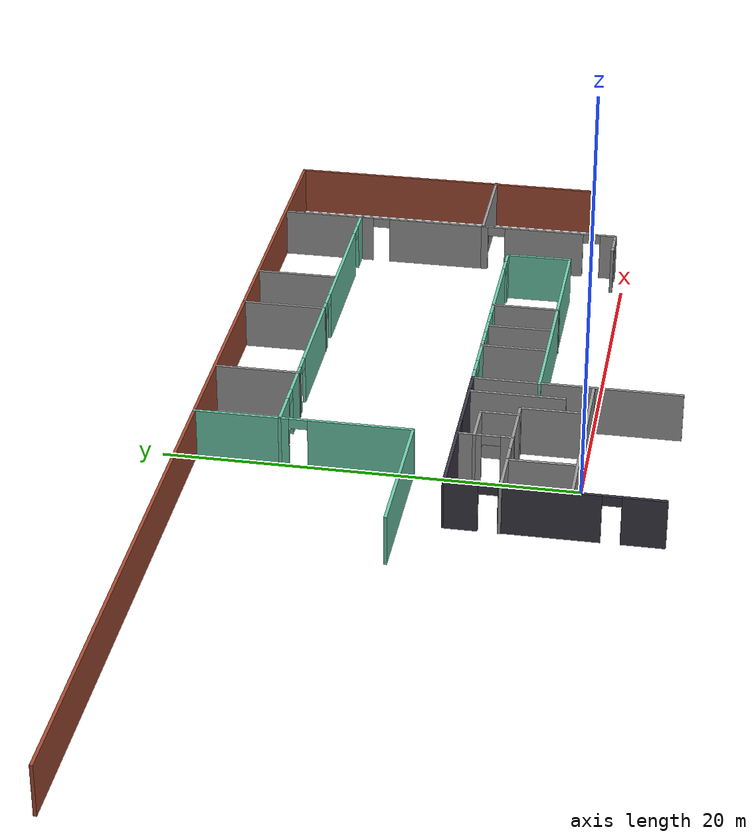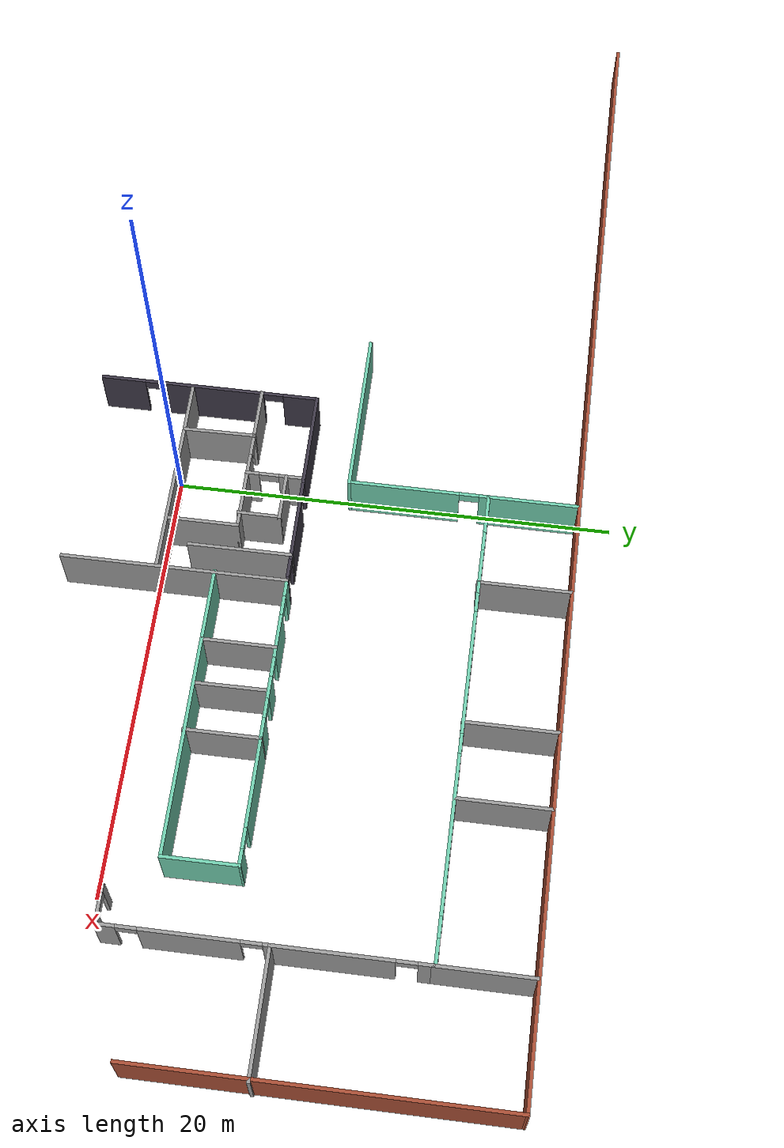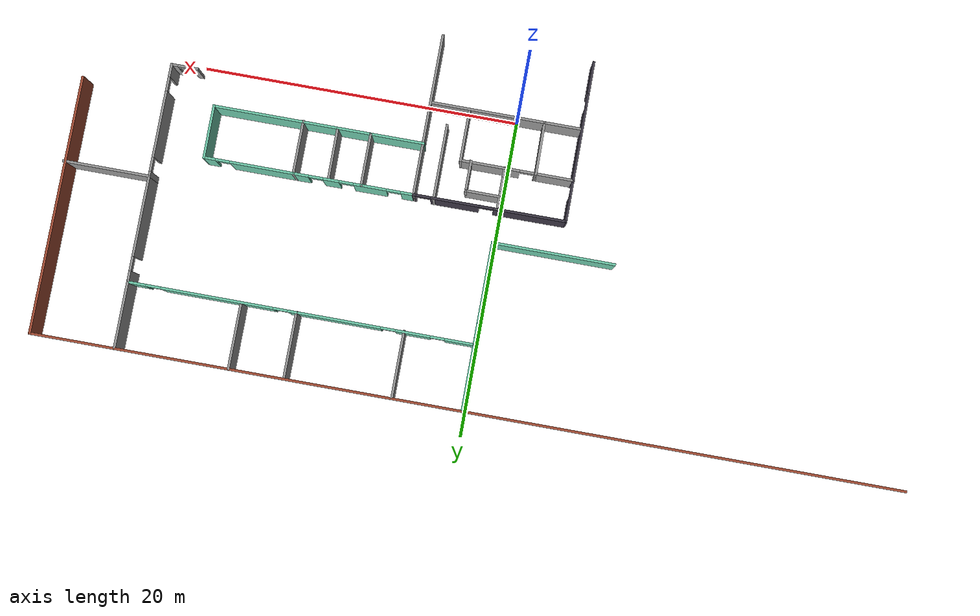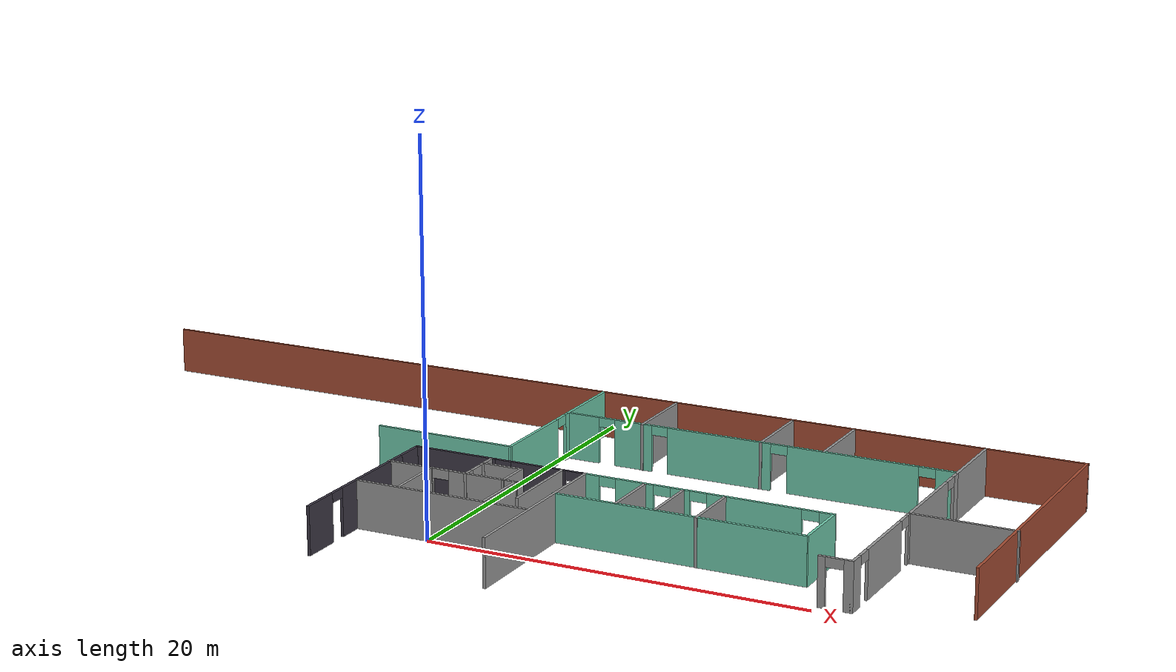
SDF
<sdf version="1.7">
 <model name="circuit_launch">
  <pose>0.02205 -0.005269 0 0 -0 0</pose>
  <link name="Wall_100">
   <pose>21.684 10.9599 0 0 -0 1.5708</pose>
   <visual name="Wall_100_Visual_0">
    <pose>-0.787773 0 1.25 0 -0 0</pose>
    <geometry><box><size>5.12125 0.15 2.5</size></box></geometry>
    <material>
     <script><uri>file://media/materials/scripts/gazebo.material</uri><name>Gazebo/Grey</name></script>
     <ambient>1 1 1 1</ambient>
    </material>
    <meta><layer>0</layer></meta>
   </visual>
   <collision name="Wall_100_Collision_0">
    <geometry><box><size>5.12125 0.15 2.5</size></box></geometry>
    <pose>-0.787773 0 1.25 0 -0 0</pose>
   </collision>
   <visual name="Wall_100_Visual_1">
    <pose>3.01063 0 1.25 0 -0 0</pose>
    <geometry><box><size>0.675545 0.15 2.5</size></box></geometry>
    <material>
     <script><uri>file://media/materials/scripts/gazebo.material</uri><name>Gazebo/Grey</name></script>
     <ambient>1 1 1 1</ambient>
    </material>
    <meta><layer>0</layer></meta>
   </visual>
   <collision name="Wall_100_Collision_1">
    <geometry><box><size>0.675545 0.15 2.5</size></box></geometry>
    <pose>3.01063 0 1.25 0 -0 0</pose>
   </collision>
   <visual name="Wall_100_Visual_2">
    <pose>2.22286 0 2.25 0 -0 0</pose>
    <geometry><box><size>0.9 0.15 0.5</size></box></geometry>
    <material>
     <script><uri>file://media/materials/scripts/gazebo.material</uri><name>Gazebo/Grey</name></script>
     <ambient>1 1 1 1</ambient>
    </material>
    <meta><layer>0</layer></meta>
   </visual>
   <collision name="Wall_100_Collision_2">
    <geometry><box><size>0.9 0.15 0.5</size></box></geometry>
    <pose>2.22286 0 2.25 0 -0 0</pose>
   </collision>
  </link>
  <link name="Wall_12">
   <collision name="Wall_12_Collision">
    <geometry><box><size>10.25 0.15 2.5</size></box></geometry>
    <pose>0 0 1.25 0 -0 0</pose>
   </collision>
   <visual name="Wall_12_Visual">
    <pose>0 0 1.25 0 -0 0</pose>
    <geometry><box><size>10.25 0.15 2.5</size></box></geometry>
    <material>
     <script><uri>file://media/materials/scripts/gazebo.material</uri><name>Gazebo/Grey</name></script>
     <ambient>1 1 1 1</ambient>
    </material>
    <meta><layer>0</layer></meta>
   </visual>
   <pose>5.48338 0.868521 0 0 -0 1.5708</pose>
  </link>
  <link name="Wall_13">
   <pose>0.725889 5.90411 0 0 -0 -3.13856</pose>
   <visual name="Wall_13_Visual_0">
    <pose>-4.71281 0 1.25 0 -0 0</pose>
    <geometry><box><size>0.239451 0.15 2.5</size></box></geometry>
    <material>
     <script><uri>file://media/materials/scripts/gazebo.material</uri><name>Gazebo/Grey</name></script>
     <ambient>0.239216 0.219608 0.27451 1</ambient>
    </material>
    <meta><layer>0</layer></meta>
   </visual>
   <collision name="Wall_13_Collision_0">
    <geometry><box><size>0.239451 0.15 2.5</size></box></geometry>
    <pose>-4.71281 0 1.25 0 -0 0</pose>
   </collision>
   <visual name="Wall_13_Visual_1">
    <pose>-2.18096 0 1.25 0 -0 0</pose>
    <geometry><box><size>3.02425 0.15 2.5</size></box></geometry>
    <material>
     <script><uri>file://media/materials/scripts/gazebo.material</uri><name>Gazebo/Grey</name></script>
     <ambient>0.239216 0.219608 0.27451 1</ambient>
    </material>
    <meta><layer>0</layer></meta>
   </visual>
   <collision name="Wall_13_Collision_1">
    <geometry><box><size>3.02425 0.15 2.5</size></box></geometry>
    <pose>-2.18096 0 1.25 0 -0 0</pose>
   </collision>
   <visual name="Wall_13_Visual_2">
    <pose>2.53185 0 1.25 0 -0 0</pose>
    <geometry><box><size>4.60137 0.15 2.5</size></box></geometry>
    <material>
     <script><uri>file://media/materials/scripts/gazebo.material</uri><name>Gazebo/Grey</name></script>
     <ambient>0.239216 0.219608 0.27451 1</ambient>
    </material>
    <meta><layer>0</layer></meta>
   </visual>
   <collision name="Wall_13_Collision_2">
    <geometry><box><size>4.60137 0.15 2.5</size></box></geometry>
    <pose>2.53185 0 1.25 0 -0 0</pose>
   </collision>
   <visual name="Wall_13_Visual_3">
    <pose>-4.14309 0 2.25 0 -0 0</pose>
    <geometry><box><size>0.9 0.15 0.5</size></box></geometry>
    <material>
     <script><uri>file://media/materials/scripts/gazebo.material</uri><name>Gazebo/Grey</name></script>
     <ambient>0.239216 0.219608 0.27451 1</ambient>
    </material>
    <meta><layer>0</layer></meta>
   </visual>
   <collision name="Wall_13_Collision_3">
    <geometry><box><size>0.9 0.15 0.5</size></box></geometry>
    <pose>-4.14309 0 2.25 0 -0 0</pose>
   </collision>
   <visual name="Wall_13_Visual_4">
    <pose>-0.218831 0 2.25 0 -0 0</pose>
    <geometry><box><size>0.9 0.15 0.5</size></box></geometry>
    <material>
     <script><uri>file://media/materials/scripts/gazebo.material</uri><name>Gazebo/Grey</name></script>
     <ambient>0.239216 0.219608 0.27451 1</ambient>
    </material>
    <meta><layer>0</layer></meta>
   </visual>
   <collision name="Wall_13_Collision_4">
    <geometry><box><size>0.9 0.15 0.5</size></box></geometry>
    <pose>-0.218831 0 2.25 0 -0 0</pose>
   </collision>
  </link>
  <link name="Wall_14">
   <pose>-4.03141 0.854113 0 0 -0 -1.57076</pose>
   <visual name="Wall_14_Visual_0">
    <pose>-4.27972 0 1.25 0 -0 0</pose>
    <geometry><box><size>1.66175 0.15 2.5</size></box></geometry>
    <material>
     <script><uri>file://media/materials/scripts/gazebo.material</uri><name>Gazebo/Grey</name></script>
     <ambient>0.239216 0.219608 0.27451 1</ambient>
    </material>
    <meta><layer>0</layer></meta>
   </visual>
   <collision name="Wall_14_Collision_0">
    <geometry><box><size>1.66175 0.15 2.5</size></box></geometry>
    <pose>-4.27972 0 1.25 0 -0 0</pose>
   </collision>
   <visual name="Wall_14_Visual_1">
    <pose>-0.200437 0 1.25 0 -0 0</pose>
    <geometry><box><size>4.69681 0.15 2.5</size></box></geometry>
    <material>
     <script><uri>file://media/materials/scripts/gazebo.material</uri><name>Gazebo/Grey</name></script>
     <ambient>0.239216 0.219608 0.27451 1</ambient>
    </material>
    <meta><layer>0</layer></meta>
   </visual>
   <collision name="Wall_14_Collision_1">
    <geometry><box><size>4.69681 0.15 2.5</size></box></geometry>
    <pose>-0.200437 0 1.25 0 -0 0</pose>
   </collision>
   <visual name="Wall_14_Visual_2">
    <pose>4.07928 0 1.25 0 -0 0</pose>
    <geometry><box><size>2.06262 0.15 2.5</size></box></geometry>
    <material>
     <script><uri>file://media/materials/scripts/gazebo.material</uri><name>Gazebo/Grey</name></script>
     <ambient>0.239216 0.219608 0.27451 1</ambient>
    </material>
    <meta><layer>0</layer></meta>
   </visual>
   <collision name="Wall_14_Collision_2">
    <geometry><box><size>2.06262 0.15 2.5</size></box></geometry>
    <pose>4.07928 0 1.25 0 -0 0</pose>
   </collision>
   <visual name="Wall_14_Visual_3">
    <pose>-2.99884 0 2.25 0 -0 0</pose>
    <geometry><box><size>0.9 0.15 0.5</size></box></geometry>
    <material>
     <script><uri>file://media/materials/scripts/gazebo.material</uri><name>Gazebo/Grey</name></script>
     <ambient>0.239216 0.219608 0.27451 1</ambient>
    </material>
    <meta><layer>0</layer></meta>
   </visual>
   <collision name="Wall_14_Collision_3">
    <geometry><box><size>0.9 0.15 0.5</size></box></geometry>
    <pose>-2.99884 0 2.25 0 -0 0</pose>
   </collision>
   <visual name="Wall_14_Visual_4">
    <pose>2.59797 0 2.25 0 -0 0</pose>
    <geometry><box><size>0.9 0.15 0.5</size></box></geometry>
    <material>
     <script><uri>file://media/materials/scripts/gazebo.material</uri><name>Gazebo/Grey</name></script>
     <ambient>0.239216 0.219608 0.27451 1</ambient>
    </material>
    <meta><layer>0</layer></meta>
   </visual>
   <collision name="Wall_14_Collision_4">
    <geometry><box><size>0.9 0.15 0.5</size></box></geometry>
    <pose>2.59797 0 2.25 0 -0 0</pose>
   </collision>
  </link>
  <link name="Wall_156">
   <collision name="Wall_156_Collision">
    <geometry><box><size>4.3032 0.15 2.5</size></box></geometry>
    <pose>0 0 1.25 0 -0 0</pose>
   </collision>
   <visual name="Wall_156_Visual">
    <pose>0 0 1.25 0 -0 0</pose>
    <geometry><box><size>4.3032 0.15 2.5</size></box></geometry>
    <material>
     <script><uri>file://media/materials/scripts/gazebo.material</uri><name>Gazebo/Grey</name></script>
     <ambient>1 1 1 1</ambient>
    </material>
    <meta><layer>0</layer></meta>
   </visual>
   <pose>21.684 16.3099 0 0 -0 1.5708</pose>
  </link>
  <link name="Wall_158">
   <collision name="Wall_158_Collision">
    <geometry><box><size>4.25 0.15 2.5</size></box></geometry>
    <pose>0 0 1.25 0 -0 0</pose>
   </collision>
   <visual name="Wall_158_Visual">
    <pose>0 0 1.25 0 -0 0</pose>
    <geometry><box><size>4.25 0.15 2.5</size></box></geometry>
    <material>
     <script><uri>file://media/materials/scripts/gazebo.material</uri><name>Gazebo/Grey</name></script>
     <ambient>1 1 1 1</ambient>
    </material>
    <meta><layer>0</layer></meta>
   </visual>
   <pose>14.6128 16.3903 0 0 -0 1.5708</pose>
  </link>
  <link name="Wall_160">
   <collision name="Wall_160_Collision">
    <geometry><box><size>4.25 0.15 2.5</size></box></geometry>
    <pose>0 0 1.25 0 -0 0</pose>
   </collision>
   <visual name="Wall_160_Visual">
    <pose>0 0 1.25 0 -0 0</pose>
    <geometry><box><size>4.25 0.15 2.5</size></box></geometry>
    <material>
     <script><uri>file://media/materials/scripts/gazebo.material</uri><name>Gazebo/Grey</name></script>
     <ambient>1 1 1 1</ambient>
    </material>
    <meta><layer>0</layer></meta>
   </visual>
   <pose>11.1867 16.3597 0 0 -0 1.5708</pose>
  </link>
  <link name="Wall_163">
   <collision name="Wall_163_Collision">
    <geometry><box><size>4.25 0.15 2.5</size></box></geometry>
    <pose>0 0 1.25 0 -0 0</pose>
   </collision>
   <visual name="Wall_163_Visual">
    <pose>0 0 1.25 0 -0 0</pose>
    <geometry><box><size>4.25 0.15 2.5</size></box></geometry>
    <material>
     <script><uri>file://media/materials/scripts/gazebo.material</uri><name>Gazebo/Grey</name></script>
     <ambient>1 1 1 1</ambient>
    </material>
    <meta><layer>0</layer></meta>
   </visual>
   <pose>4.51804 16.3291 0 0 -0 1.5708</pose>
  </link>
  <link name="Wall_165">
   <collision name="Wall_165_Collision">
    <geometry><box><size>4.25 0.15 2.5</size></box></geometry>
    <pose>0 0 1.25 0 -0 0</pose>
   </collision>
   <visual name="Wall_165_Visual">
    <pose>0 0 1.25 0 -0 0</pose>
    <geometry><box><size>4.25 0.15 2.5</size></box></geometry>
    <material>
     <script><uri>file://media/materials/scripts/gazebo.material</uri><name>Gazebo/Grey</name></script>
     <ambient>0.435294 0.796078 0.67451 1</ambient>
    </material>
    <meta><layer>0</layer></meta>
   </visual>
   <pose>0.179829 16.3748 0 0 -0 1.5708</pose>
  </link>
  <link name="Wall_194">
   <pose>10.8548 14.3248 0 0 -0 0</pose>
   <visual name="Wall_194_Visual_0">
    <pose>-9.80483 0 1.25 0 -0 0</pose>
    <geometry><box><size>1.89033 0.15 2.5</size></box></geometry>
    <material>
     <script><uri>file://media/materials/scripts/gazebo.material</uri><name>Gazebo/Grey</name></script>
     <ambient>0.435294 0.796078 0.67451 1</ambient>
    </material>
    <meta><layer>0</layer></meta>
   </visual>
   <collision name="Wall_194_Collision_0">
    <geometry><box><size>1.89033 0.15 2.5</size></box></geometry>
    <pose>-9.80483 0 1.25 0 -0 0</pose>
   </collision>
   <visual name="Wall_194_Visual_1">
    <pose>-6.88016 0 1.25 0 -0 0</pose>
    <geometry><box><size>2.15902 0.15 2.5</size></box></geometry>
    <material>
     <script><uri>file://media/materials/scripts/gazebo.material</uri><name>Gazebo/Grey</name></script>
     <ambient>0.435294 0.796078 0.67451 1</ambient>
    </material>
    <meta><layer>0</layer></meta>
   </visual>
   <collision name="Wall_194_Collision_1">
    <geometry><box><size>2.15902 0.15 2.5</size></box></geometry>
    <pose>-6.88016 0 1.25 0 -0 0</pose>
   </collision>
   <visual name="Wall_194_Visual_2">
    <pose>-2.01232 0 1.25 0 -0 0</pose>
    <geometry><box><size>5.77665 0.15 2.5</size></box></geometry>
    <material>
     <script><uri>file://media/materials/scripts/gazebo.material</uri><name>Gazebo/Grey</name></script>
     <ambient>0.435294 0.796078 0.67451 1</ambient>
    </material>
    <meta><layer>0</layer></meta>
   </visual>
   <collision name="Wall_194_Collision_2">
    <geometry><box><size>5.77665 0.15 2.5</size></box></geometry>
    <pose>-2.01232 0 1.25 0 -0 0</pose>
   </collision>
   <visual name="Wall_194_Visual_3">
    <pose>5.28944 0 1.25 0 -0 0</pose>
    <geometry><box><size>7.02686 0.15 2.5</size></box></geometry>
    <material>
     <script><uri>file://media/materials/scripts/gazebo.material</uri><name>Gazebo/Grey</name></script>
     <ambient>0.435294 0.796078 0.67451 1</ambient>
    </material>
    <meta><layer>0</layer></meta>
   </visual>
   <collision name="Wall_194_Collision_3">
    <geometry><box><size>7.02686 0.15 2.5</size></box></geometry>
    <pose>5.28944 0 1.25 0 -0 0</pose>
   </collision>
   <visual name="Wall_194_Visual_4">
    <pose>10.2264 0 1.25 0 -0 0</pose>
    <geometry><box><size>1.04713 0.15 2.5</size></box></geometry>
    <material>
     <script><uri>file://media/materials/scripts/gazebo.material</uri><name>Gazebo/Grey</name></script>
     <ambient>0.435294 0.796078 0.67451 1</ambient>
    </material>
    <meta><layer>0</layer></meta>
   </visual>
   <collision name="Wall_194_Collision_4">
    <geometry><box><size>1.04713 0.15 2.5</size></box></geometry>
    <pose>10.2264 0 1.25 0 -0 0</pose>
   </collision>
   <visual name="Wall_194_Visual_5">
    <pose>-8.40967 0 2.25 0 -0 0</pose>
    <geometry><box><size>0.9 0.15 0.5</size></box></geometry>
    <material>
     <script><uri>file://media/materials/scripts/gazebo.material</uri><name>Gazebo/Grey</name></script>
     <ambient>0.435294 0.796078 0.67451 1</ambient>
    </material>
    <meta><layer>0</layer></meta>
   </visual>
   <collision name="Wall_194_Collision_5">
    <geometry><box><size>0.9 0.15 0.5</size></box></geometry>
    <pose>-8.40967 0 2.25 0 -0 0</pose>
   </collision>
   <visual name="Wall_194_Visual_6">
    <pose>-5.35064 0 2.25 0 -0 0</pose>
    <geometry><box><size>0.9 0.15 0.5</size></box></geometry>
    <material>
     <script><uri>file://media/materials/scripts/gazebo.material</uri><name>Gazebo/Grey</name></script>
     <ambient>0.435294 0.796078 0.67451 1</ambient>
    </material>
    <meta><layer>0</layer></meta>
   </visual>
   <collision name="Wall_194_Collision_6">
    <geometry><box><size>0.9 0.15 0.5</size></box></geometry>
    <pose>-5.35064 0 2.25 0 -0 0</pose>
   </collision>
   <visual name="Wall_194_Visual_7">
    <pose>1.32601 0 2.25 0 -0 0</pose>
    <geometry><box><size>0.9 0.15 0.5</size></box></geometry>
    <material>
     <script><uri>file://media/materials/scripts/gazebo.material</uri><name>Gazebo/Grey</name></script>
     <ambient>0.435294 0.796078 0.67451 1</ambient>
    </material>
    <meta><layer>0</layer></meta>
   </visual>
   <collision name="Wall_194_Collision_7">
    <geometry><box><size>0.9 0.15 0.5</size></box></geometry>
    <pose>1.32601 0 2.25 0 -0 0</pose>
   </collision>
   <visual name="Wall_194_Visual_8">
    <pose>9.25286 0 2.25 0 -0 0</pose>
    <geometry><box><size>0.9 0.15 0.5</size></box></geometry>
    <material>
     <script><uri>file://media/materials/scripts/gazebo.material</uri><name>Gazebo/Grey</name></script>
     <ambient>0.435294 0.796078 0.67451 1</ambient>
    </material>
    <meta><layer>0</layer></meta>
   </visual>
   <collision name="Wall_194_Collision_8">
    <geometry><box><size>0.9 0.15 0.5</size></box></geometry>
    <pose>9.25286 0 2.25 0 -0 0</pose>
   </collision>
  </link>
  <link name="Wall_198">
   <pose>0.179829 11.1498 0 0 -0 -1.5708</pose>
   <visual name="Wall_198_Visual_0">
    <pose>-2.99528 0 1.25 0 -0 0</pose>
    <geometry><box><size>0.509431 0.15 2.5</size></box></geometry>
    <material>
     <script><uri>file://media/materials/scripts/gazebo.material</uri><name>Gazebo/Grey</name></script>
     <ambient>0.435294 0.796078 0.67451 1</ambient>
    </material>
    <meta><layer>0</layer></meta>
   </visual>
   <collision name="Wall_198_Collision_0">
    <geometry><box><size>0.509431 0.15 2.5</size></box></geometry>
    <pose>-2.99528 0 1.25 0 -0 0</pose>
   </collision>
   <visual name="Wall_198_Visual_1">
    <pose>0.704715 0 1.25 0 -0 0</pose>
    <geometry><box><size>5.09057 0.15 2.5</size></box></geometry>
    <material>
     <script><uri>file://media/materials/scripts/gazebo.material</uri><name>Gazebo/Grey</name></script>
     <ambient>0.435294 0.796078 0.67451 1</ambient>
    </material>
    <meta><layer>0</layer></meta>
   </visual>
   <collision name="Wall_198_Collision_1">
    <geometry><box><size>5.09057 0.15 2.5</size></box></geometry>
    <pose>0.704715 0 1.25 0 -0 0</pose>
   </collision>
   <visual name="Wall_198_Visual_2">
    <pose>-2.29057 0 2.25 0 -0 0</pose>
    <geometry><box><size>0.9 0.15 0.5</size></box></geometry>
    <material>
     <script><uri>file://media/materials/scripts/gazebo.material</uri><name>Gazebo/Grey</name></script>
     <ambient>0.435294 0.796078 0.67451 1</ambient>
    </material>
    <meta><layer>0</layer></meta>
   </visual>
   <collision name="Wall_198_Collision_2">
    <geometry><box><size>0.9 0.15 0.5</size></box></geometry>
    <pose>-2.29057 0 2.25 0 -0 0</pose>
   </collision>
  </link>
  <link name="Wall_200">
   <collision name="Wall_200_Collision">
    <geometry><box><size>7.75 0.15 2.5</size></box></geometry>
    <pose>0 0 1.25 0 -0 0</pose>
   </collision>
   <visual name="Wall_200_Visual">
    <pose>0 0 1.25 0 -0 0</pose>
    <geometry><box><size>7.75 0.15 2.5</size></box></geometry>
    <material>
     <script><uri>file://media/materials/scripts/gazebo.material</uri><name>Gazebo/Grey</name></script>
     <ambient>0.435294 0.796078 0.67451 1</ambient>
    </material>
    <meta><layer>0</layer></meta>
   </visual>
   <pose>-3.62017 7.97482 0 0 -0 3.14159</pose>
  </link>
  <link name="Wall_214">
   <collision name="Wall_214_Collision">
    <geometry><box><size>3.44918 0.15 2.5</size></box></geometry>
    <pose>0 0 1.25 0 -0 0</pose>
   </collision>
   <visual name="Wall_214_Visual">
    <pose>0 0 1.25 0 -0 0</pose>
    <geometry><box><size>3.44918 0.15 2.5</size></box></geometry>
    <material>
     <script><uri>file://media/materials/scripts/gazebo.material</uri><name>Gazebo/Grey</name></script>
     <ambient>1 1 1 1</ambient>
    </material>
    <meta><layer>0</layer></meta>
   </visual>
   <pose>12.9929 4.29092 0 0 -0 -1.5708</pose>
  </link>
  <link name="Wall_216">
   <collision name="Wall_216_Collision">
    <geometry><box><size>3.30783 0.15 2.5</size></box></geometry>
    <pose>0 0 1.25 0 -0 0</pose>
   </collision>
   <visual name="Wall_216_Visual">
    <pose>0 0 1.25 0 -0 0</pose>
    <geometry><box><size>3.30783 0.15 2.5</size></box></geometry>
    <material>
     <script><uri>file://media/materials/scripts/gazebo.material</uri><name>Gazebo/Grey</name></script>
     <ambient>1 1 1 1</ambient>
    </material>
    <meta><layer>0</layer></meta>
   </visual>
   <pose>10.8106 4.34121 0 0 -0 -1.56443</pose>
  </link>
  <link name="Wall_218">
   <collision name="Wall_218_Collision">
    <geometry><box><size>3.34806 0.15 2.5</size></box></geometry>
    <pose>0 0 1.25 0 -0 0</pose>
   </collision>
   <visual name="Wall_218_Visual">
    <pose>0 0 1.25 0 -0 0</pose>
    <geometry><box><size>3.34806 0.15 2.5</size></box></geometry>
    <material>
     <script><uri>file://media/materials/scripts/gazebo.material</uri><name>Gazebo/Grey</name></script>
     <ambient>1 1 1 1</ambient>
    </material>
    <meta><layer>0</layer></meta>
   </visual>
   <pose>8.74891 4.32109 0 0 -0 -1.5708</pose>
  </link>
  <link name="Wall_22">
   <collision name="Wall_22_Collision">
    <geometry><box><size>9.5 0.15 2.5</size></box></geometry>
    <pose>0 0 1.25 0 -0 0</pose>
   </collision>
   <visual name="Wall_22_Visual">
    <pose>0 0 1.25 0 -0 0</pose>
    <geometry><box><size>9.5 0.15 2.5</size></box></geometry>
    <material>
     <script><uri>file://media/materials/scripts/gazebo.material</uri><name>Gazebo/Grey</name></script>
     <ambient>1 1 1 1</ambient>
    </material>
    <meta><layer>0</layer></meta>
   </visual>
   <pose>0.676779 0.065985 0 0 -0 0</pose>
  </link>
  <link name="Wall_224">
   <pose>15.7929 5.94024 0 0 -0 0</pose>
   <visual name="Wall_224_Visual_0">
    <pose>-0.850007 0 1.25 0 -0 0</pose>
    <geometry><box><size>4.04999 0.15 2.5</size></box></geometry>
    <material>
     <script><uri>file://media/materials/scripts/gazebo.material</uri><name>Gazebo/Grey</name></script>
     <ambient>0.435294 0.796078 0.67451 1</ambient>
    </material>
    <meta><layer>0</layer></meta>
   </visual>
   <collision name="Wall_224_Collision_0">
    <geometry><box><size>4.04999 0.15 2.5</size></box></geometry>
    <pose>-0.850007 0 1.25 0 -0 0</pose>
   </collision>
   <visual name="Wall_224_Visual_1">
    <pose>2.47499 0 1.25 0 -0 0</pose>
    <geometry><box><size>0.800014 0.15 2.5</size></box></geometry>
    <material>
     <script><uri>file://media/materials/scripts/gazebo.material</uri><name>Gazebo/Grey</name></script>
     <ambient>0.435294 0.796078 0.67451 1</ambient>
    </material>
    <meta><layer>0</layer></meta>
   </visual>
   <collision name="Wall_224_Collision_1">
    <geometry><box><size>0.800014 0.15 2.5</size></box></geometry>
    <pose>2.47499 0 1.25 0 -0 0</pose>
   </collision>
   <visual name="Wall_224_Visual_2">
    <pose>1.62499 0 2.25 0 -0 0</pose>
    <geometry><box><size>0.9 0.15 0.5</size></box></geometry>
    <material>
     <script><uri>file://media/materials/scripts/gazebo.material</uri><name>Gazebo/Grey</name></script>
     <ambient>0.435294 0.796078 0.67451 1</ambient>
    </material>
    <meta><layer>0</layer></meta>
   </visual>
   <collision name="Wall_224_Collision_2">
    <geometry><box><size>0.9 0.15 0.5</size></box></geometry>
    <pose>1.62499 0 2.25 0 -0 0</pose>
   </collision>
  </link>
  <link name="Wall_225">
   <collision name="Wall_225_Collision">
    <geometry><box><size>3.40841 0.15 2.5</size></box></geometry>
    <pose>0 0 1.25 0 -0 0</pose>
   </collision>
   <visual name="Wall_225_Visual">
    <pose>0 0 1.25 0 -0 0</pose>
    <geometry><box><size>3.40841 0.15 2.5</size></box></geometry>
    <material>
     <script><uri>file://media/materials/scripts/gazebo.material</uri><name>Gazebo/Grey</name></script>
     <ambient>0.435294 0.796078 0.67451 1</ambient>
    </material>
    <meta><layer>0</layer></meta>
   </visual>
   <pose>18.5987 4.31104 0 0 -0 -1.56721</pose>
  </link>
  <link name="Wall_29">
   <collision name="Wall_29_Collision">
    <geometry><box><size>2.5 0.15 2.5</size></box></geometry>
    <pose>0 0 1.25 0 -0 0</pose>
   </collision>
   <visual name="Wall_29_Visual">
    <pose>0 0 1.25 0 -0 0</pose>
    <geometry><box><size>2.5 0.15 2.5</size></box></geometry>
    <material>
     <script><uri>file://media/materials/scripts/gazebo.material</uri><name>Gazebo/Grey</name></script>
     <ambient>1 1 1 1</ambient>
    </material>
    <meta><layer>0</layer></meta>
   </visual>
   <pose>-2.88406 3.30545 0 0 -0 0</pose>
  </link>
  <link name="Wall_30">
   <collision name="Wall_30_Collision">
    <geometry><box><size>3.37448 0.15 2.5</size></box></geometry>
    <pose>0 0 1.25 0 -0 0</pose>
   </collision>
   <visual name="Wall_30_Visual">
    <pose>0 0 1.25 0 -0 0</pose>
    <geometry><box><size>3.37448 0.15 2.5</size></box></geometry>
    <material>
     <script><uri>file://media/materials/scripts/gazebo.material</uri><name>Gazebo/Grey</name></script>
     <ambient>1 1 1 1</ambient>
    </material>
    <meta><layer>0</layer></meta>
   </visual>
   <pose>-1.69017 1.69332 0 0 -0 -1.55908</pose>
  </link>
  <link name="Wall_32">
   <pose>0.651978 3.30545 0 0 -0 0</pose>
   <visual name="Wall_32_Visual_0">
    <pose>-2.33849 0 1.25 0 -0 0</pose>
    <geometry><box><size>0.19508 0.15 2.5</size></box></geometry>
    <material>
     <script><uri>file://media/materials/scripts/gazebo.material</uri><name>Gazebo/Grey</name></script>
     <ambient>1 1 1 1</ambient>
    </material>
    <meta><layer>0</layer></meta>
   </visual>
   <collision name="Wall_32_Collision_0">
    <geometry><box><size>0.19508 0.15 2.5</size></box></geometry>
    <pose>-2.33849 0 1.25 0 -0 0</pose>
   </collision>
   <visual name="Wall_32_Visual_1">
    <pose>0.54754 0 1.25 0 -0 0</pose>
    <geometry><box><size>3.77699 0.15 2.5</size></box></geometry>
    <material>
     <script><uri>file://media/materials/scripts/gazebo.material</uri><name>Gazebo/Grey</name></script>
     <ambient>1 1 1 1</ambient>
    </material>
    <meta><layer>0</layer></meta>
   </visual>
   <collision name="Wall_32_Collision_1">
    <geometry><box><size>3.77699 0.15 2.5</size></box></geometry>
    <pose>0.54754 0 1.25 0 -0 0</pose>
   </collision>
   <visual name="Wall_32_Visual_2">
    <pose>-1.79095 0 2.25 0 -0 0</pose>
    <geometry><box><size>0.9 0.15 0.5</size></box></geometry>
    <material>
     <script><uri>file://media/materials/scripts/gazebo.material</uri><name>Gazebo/Grey</name></script>
     <ambient>1 1 1 1</ambient>
    </material>
    <meta><layer>0</layer></meta>
   </visual>
   <collision name="Wall_32_Collision_2">
    <geometry><box><size>0.9 0.15 0.5</size></box></geometry>
    <pose>-1.79095 0 2.25 0 -0 0</pose>
   </collision>
  </link>
  <link name="Wall_33">
   <collision name="Wall_33_Collision">
    <geometry><box><size>3.25 0.15 2.5</size></box></geometry>
    <pose>0 0 1.25 0 -0 0</pose>
   </collision>
   <visual name="Wall_33_Visual">
    <pose>0 0 1.25 0 -0 0</pose>
    <geometry><box><size>3.25 0.15 2.5</size></box></geometry>
    <material>
     <script><uri>file://media/materials/scripts/gazebo.material</uri><name>Gazebo/Grey</name></script>
     <ambient>1 1 1 1</ambient>
    </material>
    <meta><layer>0</layer></meta>
   </visual>
   <pose>3.01301 1.75545 0 0 -0 -1.5708</pose>
  </link>
  <link name="Wall_36">
   <collision name="Wall_36_Collision">
    <geometry><box><size>2.25 0.15 2.5</size></box></geometry>
    <pose>0 0 1.25 0 -0 0</pose>
   </collision>
   <visual name="Wall_36_Visual">
    <pose>0 0 1.25 0 -0 0</pose>
    <geometry><box><size>2.25 0.15 2.5</size></box></geometry>
    <material>
     <script><uri>file://media/materials/scripts/gazebo.material</uri><name>Gazebo/Grey</name></script>
     <ambient>1 1 1 1</ambient>
    </material>
    <meta><layer>0</layer></meta>
   </visual>
   <pose>1.31023 5.10177 0 0 -0 0</pose>
  </link>
  <link name="Wall_39">
   <collision name="Wall_39_Collision">
    <geometry><box><size>2 0.15 2.5</size></box></geometry>
    <pose>0 0 1.25 0 -0 0</pose>
   </collision>
   <visual name="Wall_39_Visual">
    <pose>0 0 1.25 0 -0 0</pose>
    <geometry><box><size>2 0.15 2.5</size></box></geometry>
    <material>
     <script><uri>file://media/materials/scripts/gazebo.material</uri><name>Gazebo/Grey</name></script>
     <ambient>1 1 1 1</ambient>
    </material>
    <meta><layer>0</layer></meta>
   </visual>
   <pose>2.36023 4.17677 0 0 -0 -1.5708</pose>
  </link>
  <link name="Wall_46">
   <pose>0.260229 4.59094 0 0 -0 -1.5708</pose>
   <visual name="Wall_46_Visual_0">
    <pose>-0.771645 0 1.25 0 -0 0</pose>
    <geometry><box><size>1.20671 0.15 2.5</size></box></geometry>
    <material>
     <script><uri>file://media/materials/scripts/gazebo.material</uri><name>Gazebo/Grey</name></script>
     <ambient>1 1 1 1</ambient>
    </material>
    <meta><layer>0</layer></meta>
   </visual>
   <collision name="Wall_46_Collision_0">
    <geometry><box><size>1.20671 0.15 2.5</size></box></geometry>
    <pose>-0.771645 0 1.25 0 -0 0</pose>
   </collision>
   <visual name="Wall_46_Visual_1">
    <pose>1.05336 0 1.25 0 -0 0</pose>
    <geometry><box><size>0.64329 0.15 2.5</size></box></geometry>
    <material>
     <script><uri>file://media/materials/scripts/gazebo.material</uri><name>Gazebo/Grey</name></script>
     <ambient>1 1 1 1</ambient>
    </material>
    <meta><layer>0</layer></meta>
   </visual>
   <collision name="Wall_46_Collision_1">
    <geometry><box><size>0.64329 0.15 2.5</size></box></geometry>
    <pose>1.05336 0 1.25 0 -0 0</pose>
   </collision>
   <visual name="Wall_46_Visual_2">
    <pose>0.28171 0 2.25 0 -0 0</pose>
    <geometry><box><size>0.9 0.15 0.5</size></box></geometry>
    <material>
     <script><uri>file://media/materials/scripts/gazebo.material</uri><name>Gazebo/Grey</name></script>
     <ambient>1 1 1 1</ambient>
    </material>
    <meta><layer>0</layer></meta>
   </visual>
   <collision name="Wall_46_Collision_2">
    <geometry><box><size>0.9 0.15 0.5</size></box></geometry>
    <pose>0.28171 0 2.25 0 -0 0</pose>
   </collision>
  </link>
  <link name="Wall_49">
   <collision name="Wall_49_Collision">
    <geometry><box><size>4.75 0.15 2.5</size></box></geometry>
    <pose>0 0 1.25 0 -0 0</pose>
   </collision>
   <visual name="Wall_49_Visual">
    <pose>0 0 1.25 0 -0 0</pose>
    <geometry><box><size>4.75 0.15 2.5</size></box></geometry>
    <material>
     <script><uri>file://media/materials/scripts/gazebo.material</uri><name>Gazebo/Grey</name></script>
     <ambient>1 1 1 1</ambient>
    </material>
    <meta><layer>0</layer></meta>
   </visual>
   <pose>4.2145 3.62135 0 0 -0 -1.5708</pose>
  </link>
  <link name="Wall_59">
   <collision name="Wall_59_Collision">
    <geometry><box><size>54.1178 0.15 2.5</size></box></geometry>
    <pose>0 0 1.25 0 -0 0</pose>
   </collision>
   <visual name="Wall_59_Visual">
    <pose>0 0 1.25 0 -0 0</pose>
    <geometry><box><size>54.1178 0.15 2.5</size></box></geometry>
    <material>
     <script><uri>file://media/materials/scripts/gazebo.material</uri><name>Gazebo/Bricks</name></script>
     <ambient>1 1 1 1</ambient>
    </material>
    <meta><layer>0</layer></meta>
   </visual>
   <pose>-0.040942 18.438 0 0 -0 0.00102</pose>
  </link>
  <link name="Wall_60">
   <collision name="Wall_60_Collision">
    <geometry><box><size>16.25 0.15 2.5</size></box></geometry>
    <pose>0 0 1.25 0 -0 0</pose>
   </collision>
   <visual name="Wall_60_Visual">
    <pose>0 0 1.25 0 -0 0</pose>
    <geometry><box><size>16.25 0.15 2.5</size></box></geometry>
    <material>
     <script><uri>file://media/materials/scripts/gazebo.material</uri><name>Gazebo/Bricks</name></script>
     <ambient>1 1 1 1</ambient>
    </material>
    <meta><layer>0</layer></meta>
   </visual>
   <pose>26.9429 10.4155 0 0 -0 -1.5708</pose>
  </link>
  <link name="Wall_84">
   <collision name="Wall_84_Collision">
    <geometry><box><size>13.25 0.15 2.5</size></box></geometry>
    <pose>0 0 1.25 0 -0 0</pose>
   </collision>
   <visual name="Wall_84_Visual">
    <pose>0 0 1.25 0 -0 0</pose>
    <geometry><box><size>13.25 0.15 2.5</size></box></geometry>
    <material>
     <script><uri>file://media/materials/scripts/gazebo.material</uri><name>Gazebo/Grey</name></script>
     <ambient>0.435294 0.796078 0.67451 1</ambient>
    </material>
    <meta><layer>0</layer></meta>
   </visual>
   <pose>11.9947 2.67806 0 0 -0 0</pose>
  </link>
  <link name="Wall_93">
   <pose>9.23813 5.92938 0 0 -0 -3.1387</pose>
   <visual name="Wall_93_Visual_0">
    <pose>-3.32054 0 1.25 0 -0 0</pose>
    <geometry><box><size>1.01844 0.15 2.5</size></box></geometry>
    <material>
     <script><uri>file://media/materials/scripts/gazebo.material</uri><name>Gazebo/Grey</name></script>
     <ambient>0.435294 0.796078 0.67451 1</ambient>
    </material>
    <meta><layer>0</layer></meta>
   </visual>
   <collision name="Wall_93_Collision_0">
    <geometry><box><size>1.01844 0.15 2.5</size></box></geometry>
    <pose>-3.32054 0 1.25 0 -0 0</pose>
   </collision>
   <visual name="Wall_93_Visual_1">
    <pose>-1.39685 0 1.25 0 -0 0</pose>
    <geometry><box><size>1.02895 0.15 2.5</size></box></geometry>
    <material>
     <script><uri>file://media/materials/scripts/gazebo.material</uri><name>Gazebo/Grey</name></script>
     <ambient>0.435294 0.796078 0.67451 1</ambient>
    </material>
    <meta><layer>0</layer></meta>
   </visual>
   <collision name="Wall_93_Collision_1">
    <geometry><box><size>1.02895 0.15 2.5</size></box></geometry>
    <pose>-1.39685 0 1.25 0 -0 0</pose>
   </collision>
   <visual name="Wall_93_Visual_2">
    <pose>1.04465 0 1.25 0 -0 0</pose>
    <geometry><box><size>2.05404 0.15 2.5</size></box></geometry>
    <material>
     <script><uri>file://media/materials/scripts/gazebo.material</uri><name>Gazebo/Grey</name></script>
     <ambient>0.435294 0.796078 0.67451 1</ambient>
    </material>
    <meta><layer>0</layer></meta>
   </visual>
   <collision name="Wall_93_Collision_2">
    <geometry><box><size>2.05404 0.15 2.5</size></box></geometry>
    <pose>1.04465 0 1.25 0 -0 0</pose>
   </collision>
   <visual name="Wall_93_Visual_3">
    <pose>3.40071 0 1.25 0 -0 0</pose>
    <geometry><box><size>0.858099 0.15 2.5</size></box></geometry>
    <material>
     <script><uri>file://media/materials/scripts/gazebo.material</uri><name>Gazebo/Grey</name></script>
     <ambient>0.435294 0.796078 0.67451 1</ambient>
    </material>
    <meta><layer>0</layer></meta>
   </visual>
   <collision name="Wall_93_Collision_3">
    <geometry><box><size>0.858099 0.15 2.5</size></box></geometry>
    <pose>3.40071 0 1.25 0 -0 0</pose>
   </collision>
   <visual name="Wall_93_Visual_4">
    <pose>-2.36132 0 2.25 0 -0 0</pose>
    <geometry><box><size>0.9 0.15 0.5</size></box></geometry>
    <material>
     <script><uri>file://media/materials/scripts/gazebo.material</uri><name>Gazebo/Grey</name></script>
     <ambient>0.435294 0.796078 0.67451 1</ambient>
    </material>
    <meta><layer>0</layer></meta>
   </visual>
   <collision name="Wall_93_Collision_4">
    <geometry><box><size>0.9 0.15 0.5</size></box></geometry>
    <pose>-2.36132 0 2.25 0 -0 0</pose>
   </collision>
   <visual name="Wall_93_Visual_5">
    <pose>-0.432373 0 2.25 0 -0 0</pose>
    <geometry><box><size>0.9 0.15 0.5</size></box></geometry>
    <material>
     <script><uri>file://media/materials/scripts/gazebo.material</uri><name>Gazebo/Grey</name></script>
     <ambient>0.435294 0.796078 0.67451 1</ambient>
    </material>
    <meta><layer>0</layer></meta>
   </visual>
   <collision name="Wall_93_Collision_5">
    <geometry><box><size>0.9 0.15 0.5</size></box></geometry>
    <pose>-0.432373 0 2.25 0 -0 0</pose>
   </collision>
   <visual name="Wall_93_Visual_6">
    <pose>2.52166 0 2.25 0 -0 0</pose>
    <geometry><box><size>0.9 0.15 0.5</size></box></geometry>
    <material>
     <script><uri>file://media/materials/scripts/gazebo.material</uri><name>Gazebo/Grey</name></script>
     <ambient>0.435294 0.796078 0.67451 1</ambient>
    </material>
    <meta><layer>0</layer></meta>
   </visual>
   <collision name="Wall_93_Collision_6">
    <geometry><box><size>0.9 0.15 0.5</size></box></geometry>
    <pose>2.52166 0 2.25 0 -0 0</pose>
   </collision>
  </link>
  <link name="Wall_96">
   <pose>20.884 0.586536 0 0 -0 0</pose>
   <visual name="Wall_96_Visual_0">
    <pose>-0.690088 0 1.25 0 -0 0</pose>
    <geometry><box><size>0.369824 0.15 2.5</size></box></geometry>
    <material>
     <script><uri>file://media/materials/scripts/gazebo.material</uri><name>Gazebo/Grey</name></script>
     <ambient>1 1 1 1</ambient>
    </material>
    <meta><layer>0</layer></meta>
   </visual>
   <collision name="Wall_96_Collision_0">
    <geometry><box><size>0.369824 0.15 2.5</size></box></geometry>
    <pose>-0.690088 0 1.25 0 -0 0</pose>
   </collision>
   <visual name="Wall_96_Visual_1">
    <pose>0.634912 0 1.25 0 -0 0</pose>
    <geometry><box><size>0.480176 0.15 2.5</size></box></geometry>
    <material>
     <script><uri>file://media/materials/scripts/gazebo.material</uri><name>Gazebo/Grey</name></script>
     <ambient>1 1 1 1</ambient>
    </material>
    <meta><layer>0</layer></meta>
   </visual>
   <collision name="Wall_96_Collision_1">
    <geometry><box><size>0.480176 0.15 2.5</size></box></geometry>
    <pose>0.634912 0 1.25 0 -0 0</pose>
   </collision>
   <visual name="Wall_96_Visual_2">
    <pose>-0.055176 0 2.25 0 -0 0</pose>
    <geometry><box><size>0.9 0.15 0.5</size></box></geometry>
    <material>
     <script><uri>file://media/materials/scripts/gazebo.material</uri><name>Gazebo/Grey</name></script>
     <ambient>1 1 1 1</ambient>
    </material>
    <meta><layer>0</layer></meta>
   </visual>
   <collision name="Wall_96_Collision_2">
    <geometry><box><size>0.9 0.15 0.5</size></box></geometry>
    <pose>-0.055176 0 2.25 0 -0 0</pose>
   </collision>
  </link>
  <link name="Wall_97">
   <pose>21.684 4.13654 0 0 -0 1.5708</pose>
   <visual name="Wall_97_Visual_0">
    <pose>-3.18726 0 1.25 0 -0 0</pose>
    <geometry><box><size>0.875475 0.15 2.5</size></box></geometry>
    <material>
     <script><uri>file://media/materials/scripts/gazebo.material</uri><name>Gazebo/Grey</name></script>
     <ambient>1 1 1 1</ambient>
    </material>
    <meta><layer>0</layer></meta>
   </visual>
   <collision name="Wall_97_Collision_0">
    <geometry><box><size>0.875475 0.15 2.5</size></box></geometry>
    <pose>-3.18726 0 1.25 0 -0 0</pose>
   </collision>
   <visual name="Wall_97_Visual_1">
    <pose>0.252507 0 1.25 0 -0 0</pose>
    <geometry><box><size>4.20406 0.15 2.5</size></box></geometry>
    <material>
     <script><uri>file://media/materials/scripts/gazebo.material</uri><name>Gazebo/Grey</name></script>
     <ambient>1 1 1 1</ambient>
    </material>
    <meta><layer>0</layer></meta>
   </visual>
   <collision name="Wall_97_Collision_1">
    <geometry><box><size>4.20406 0.15 2.5</size></box></geometry>
    <pose>0.252507 0 1.25 0 -0 0</pose>
   </collision>
   <visual name="Wall_97_Visual_2">
    <pose>3.43977 0 1.25 0 -0 0</pose>
    <geometry><box><size>0.37046 0.15 2.5</size></box></geometry>
    <material>
     <script><uri>file://media/materials/scripts/gazebo.material</uri><name>Gazebo/Grey</name></script>
     <ambient>1 1 1 1</ambient>
    </material>
    <meta><layer>0</layer></meta>
   </visual>
   <collision name="Wall_97_Collision_2">
    <geometry><box><size>0.37046 0.15 2.5</size></box></geometry>
    <pose>3.43977 0 1.25 0 -0 0</pose>
   </collision>
   <visual name="Wall_97_Visual_3">
    <pose>-2.29953 0 2.25 0 -0 0</pose>
    <geometry><box><size>0.9 0.15 0.5</size></box></geometry>
    <material>
     <script><uri>file://media/materials/scripts/gazebo.material</uri><name>Gazebo/Grey</name></script>
     <ambient>1 1 1 1</ambient>
    </material>
    <meta><layer>0</layer></meta>
   </visual>
   <collision name="Wall_97_Collision_3">
    <geometry><box><size>0.9 0.15 0.5</size></box></geometry>
    <pose>-2.29953 0 2.25 0 -0 0</pose>
   </collision>
   <visual name="Wall_97_Visual_4">
    <pose>2.80454 0 2.25 0 -0 0</pose>
    <geometry><box><size>0.9 0.15 0.5</size></box></geometry>
    <material>
     <script><uri>file://media/materials/scripts/gazebo.material</uri><name>Gazebo/Grey</name></script>
     <ambient>1 1 1 1</ambient>
    </material>
    <meta><layer>0</layer></meta>
   </visual>
   <collision name="Wall_97_Collision_4">
    <geometry><box><size>0.9 0.15 0.5</size></box></geometry>
    <pose>2.80454 0 2.25 0 -0 0</pose>
   </collision>
  </link>
  <link name="Wall_98">
   <collision name="Wall_98_Collision">
    <geometry><box><size>5.5 0.15 2.5</size></box></geometry>
    <pose>0 0 1.25 0 -0 0</pose>
   </collision>
   <visual name="Wall_98_Visual">
    <pose>0 0 1.25 0 -0 0</pose>
    <geometry><box><size>5.5 0.15 2.5</size></box></geometry>
    <material>
     <script><uri>file://media/materials/scripts/gazebo.material</uri><name>Gazebo/Grey</name></script>
     <ambient>1 1 1 1</ambient>
    </material>
    <meta><layer>0</layer></meta>
   </visual>
   <pose>24.359 7.68654 0 0 -0 0</pose>
  </link>
  <static>1</static>
 </model>
</sdf>
